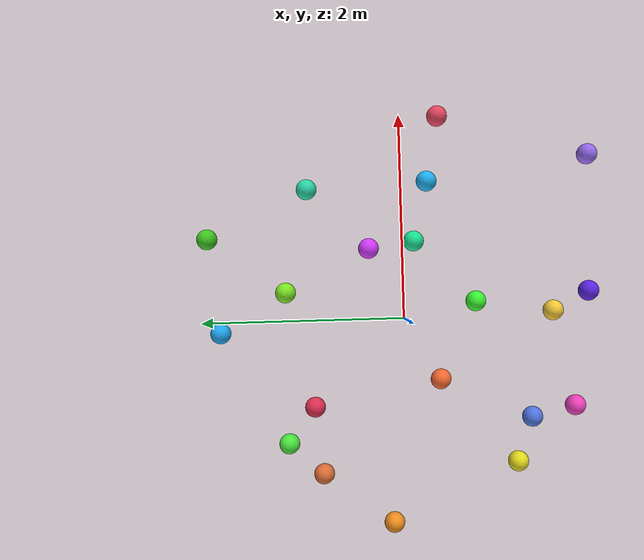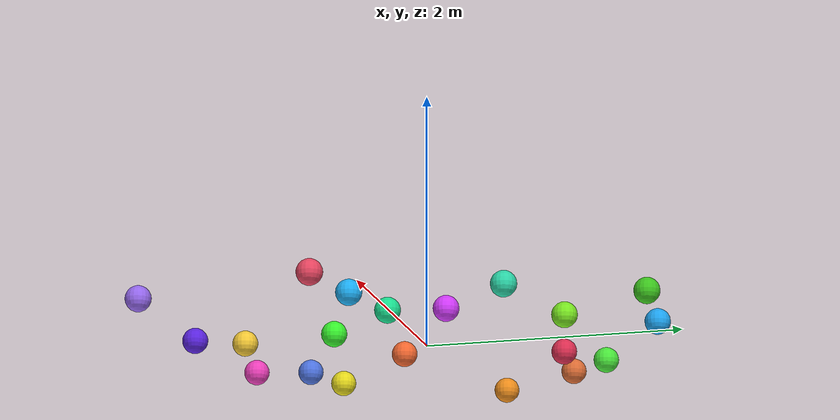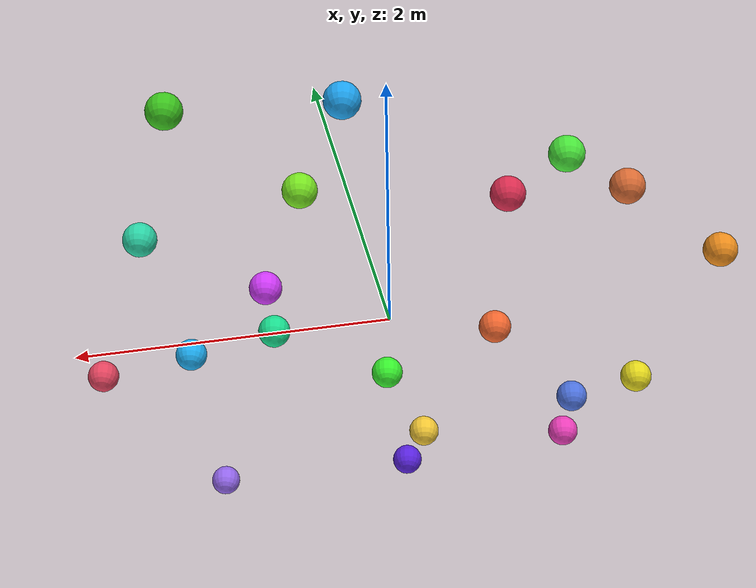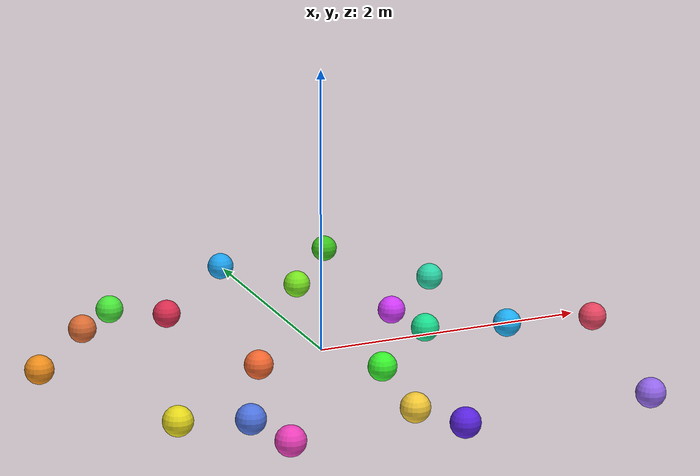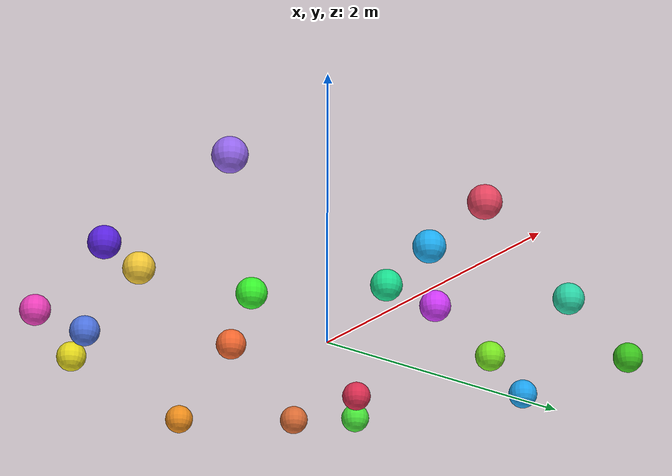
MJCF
<?xml version='1.0' encoding='utf-8'?>
<mujoco model="random_spheres">
  <option timestep="0.01" gravity="0 0 -9.81" />
  <worldbody>
    <geom name="floor" type="plane" size="50 50 0.1" pos="0 0 100" rgba="0.8 0.8 0.8 1" />

    <body name="sphere_0" pos="1.96 -0.37 0.1">
      <geom type="sphere" size="0.1" rgba="0.91 0.27 0.38 1" />
      <freejoint />
    </body>
    <body name="sphere_1" pos="0.82 1.90 0.1">
      <geom type="sphere" size="0.1" rgba="0.24 0.78 0.12 1" />
      <freejoint />
    </body>
    <body name="sphere_2" pos="-0.10 1.79 0.1">
      <geom type="sphere" size="0.1" rgba="0.12 0.65 0.95 1" />
      <freejoint />
    </body>
    <body name="sphere_3" pos="-1.49 0.82 0.1">
      <geom type="sphere" size="0.1" rgba="0.87 0.43 0.21 1" />
      <freejoint />
    </body>
    <body name="sphere_4" pos="0.22 -1.80 0.1">
      <geom type="sphere" size="0.1" rgba="0.36 0.14 0.89 1" />
      <freejoint />
    </body>
    <body name="sphere_5" pos="-1.42 -1.07 0.1">
      <geom type="sphere" size="0.1" rgba="0.91 0.86 0.11 1" />
      <freejoint />
    </body>
    <body name="sphere_6" pos="1.28 0.92 0.1">
      <geom type="sphere" size="0.1" rgba="0.17 0.84 0.66 1" />
      <freejoint />
    </body>
    <body name="sphere_7" pos="-0.89 -1.64 0.1">
      <geom type="sphere" size="0.1" rgba="0.94 0.25 0.74 1" />
      <freejoint />
    </body>
    <body name="sphere_8" pos="0.15 -0.70 0.1">
      <geom type="sphere" size="0.1" rgba="0.22 0.96 0.18 1" />
      <freejoint />
    </body>
    <body name="sphere_9" pos="1.55 -1.82 0.1">
      <geom type="sphere" size="0.1" rgba="0.59 0.41 0.94 1" />
      <freejoint />
    </body>
    <body name="sphere_10" pos="-1.98 0.15 0.1">
      <geom type="sphere" size="0.1" rgba="0.94 0.56 0.11 1" />
      <freejoint />
    </body>
    <body name="sphere_11" pos="0.75 -0.11 0.1">
      <geom type="sphere" size="0.1" rgba="0.10 0.88 0.57 1" />
      <freejoint />
    </body>
    <body name="sphere_12" pos="0.69 0.33 0.1">
      <geom type="sphere" size="0.1" rgba="0.83 0.23 0.99 1" />
      <freejoint />
    </body>
    <body name="sphere_13" pos="-1.19 1.15 0.1">
      <geom type="sphere" size="0.1" rgba="0.29 0.91 0.23 1" />
      <freejoint />
    </body>
    <body name="sphere_14" pos="-0.60 -0.34 0.1">
      <geom type="sphere" size="0.1" rgba="0.96 0.41 0.19 1" />
      <freejoint />
    </body>
    <body name="sphere_15" pos="1.33 -0.25 0.1">
      <geom type="sphere" size="0.1" rgba="0.12 0.69 0.96 1" />
      <freejoint />
    </body>
    <body name="sphere_16" pos="-0.84 0.89 0.1">
      <geom type="sphere" size="0.1" rgba="0.87 0.18 0.32 1" />
      <freejoint />
    </body>
    <body name="sphere_17" pos="0.28 1.15 0.1">
      <geom type="sphere" size="0.1" rgba="0.48 0.91 0.13 1" />
      <freejoint />
    </body>
    <body name="sphere_18" pos="-0.99 -1.22 0.1">
      <geom type="sphere" size="0.1" rgba="0.31 0.46 0.89 1" />
      <freejoint />
    </body>
    <body name="sphere_19" pos="0.04 -1.45 0.1">
      <geom type="sphere" size="0.1" rgba="0.96 0.79 0.21 1" />
      <freejoint />
    </body>
  </worldbody>
</mujoco>
